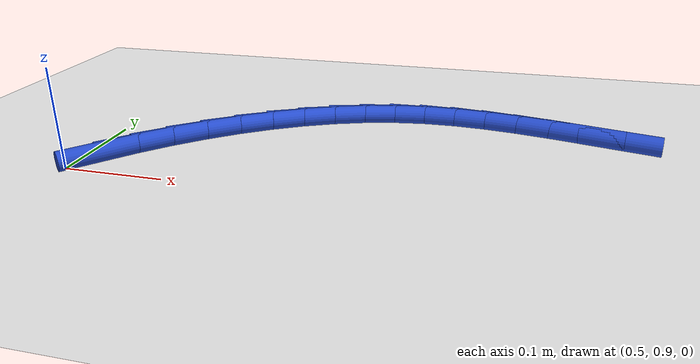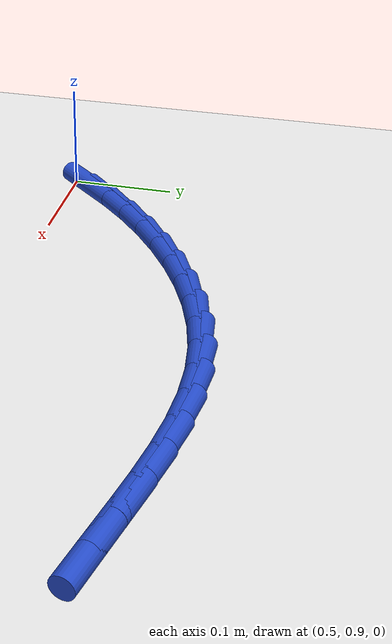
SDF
<sdf version="1.6">
 <world name="default">
  <model name="ground_plane">
   <static>1</static>
   <link name="link">
    <collision name="collision">
     <geometry><plane><normal>0 0 1</normal><size>100 100</size></plane></geometry>
     <surface><friction><ode><mu>100</mu><mu2>50</mu2></ode></friction></surface>
    </collision>
    <visual name="visual">
     <cast_shadows>0</cast_shadows>
     <geometry><plane><normal>0 0 1</normal><size>100 100</size></plane></geometry>
     <material>
      <script><uri>file://media/materials/scripts/gazebo.material</uri><name>Gazebo/WhiteGlow</name></script>
     </material>
    </visual>
   </link>
  </model>
  <model name="line">
   <link name="link_32">
    <pose>0.5239589491475768 0.9228271003695171 0.01 0 1.57 0.8429076313974756</pose>
    <collision name="collision">
     <geometry><cylinder><radius>0.01</radius><length>0.08</length></cylinder></geometry>
    </collision>
    <visual name="visual">
     <material>
      <script><name>Gazebo/Blue</name><uri>file://media/materials/scripts/gazebo.material</uri></script>
     </material>
     <geometry><cylinder><radius>0.01</radius><length>0.08</length></cylinder></geometry>
    </visual>
   </link>
   <link name="link_33">
    <pose>0.5470649551654392 0.9487562023604562 0.01 0 1.57 0.7802118866494246</pose>
    <collision name="collision">
     <geometry><cylinder><radius>0.01</radius><length>0.08</length></cylinder></geometry>
    </collision>
    <visual name="visual">
     <material>
      <script><name>Gazebo/Blue</name><uri>file://media/materials/scripts/gazebo.material</uri></script>
     </material>
     <geometry><cylinder><radius>0.01</radius><length>0.08</length></cylinder></geometry>
    </visual>
   </link>
   <link name="link_34">
    <pose>0.5720384568948993 0.9734719993249351 0.01 0 1.57 0.715855679188438</pose>
    <collision name="collision">
     <geometry><cylinder><radius>0.01</radius><length>0.08</length></cylinder></geometry>
    </collision>
    <visual name="visual">
     <material>
      <script><name>Gazebo/Blue</name><uri>file://media/materials/scripts/gazebo.material</uri></script>
     </material>
     <geometry><cylinder><radius>0.01</radius><length>0.08</length></cylinder></geometry>
    </visual>
   </link>
   <link name="link_35">
    <pose>0.5987214142825881 0.9966798238931742 0.01 0 1.57 0.6491029901672987</pose>
    <collision name="collision">
     <geometry><cylinder><radius>0.01</radius><length>0.08</length></cylinder></geometry>
    </collision>
    <visual name="visual">
     <material>
      <script><name>Gazebo/Blue</name><uri>file://media/materials/scripts/gazebo.material</uri></script>
     </material>
     <geometry><cylinder><radius>0.01</radius><length>0.08</length></cylinder></geometry>
    </visual>
   </link>
   <link name="link_36">
    <pose>0.6269228405587489 1.018078783060979 0.01 0 1.57 0.5786432785679712</pose>
    <collision name="collision">
     <geometry><cylinder><radius>0.01</radius><length>0.08</length></cylinder></geometry>
    </collision>
    <visual name="visual">
     <material>
      <script><name>Gazebo/Blue</name><uri>file://media/materials/scripts/gazebo.material</uri></script>
     </material>
     <geometry><cylinder><radius>0.01</radius><length>0.08</length></cylinder></geometry>
    </visual>
   </link>
   <link name="link_37">
    <pose>0.656451748953627 1.0373679838241572 0.01 0 1.57 0.5031580478176646</pose>
    <collision name="collision">
     <geometry><cylinder><radius>0.01</radius><length>0.08</length></cylinder></geometry>
    </collision>
    <visual name="visual">
     <material>
      <script><name>Gazebo/Blue</name><uri>file://media/materials/scripts/gazebo.material</uri></script>
     </material>
     <geometry><cylinder><radius>0.01</radius><length>0.08</length></cylinder></geometry>
    </visual>
   </link>
   <link name="link_38">
    <pose>0.6871171526974661 1.0542465331785142 0.01 0 1.57 0.4213295366004876</pose>
    <collision name="collision">
     <geometry><cylinder><radius>0.01</radius><length>0.08</length></cylinder></geometry>
    </collision>
    <visual name="visual">
     <material>
      <script><name>Gazebo/Blue</name><uri>file://media/materials/scripts/gazebo.material</uri></script>
     </material>
     <geometry><cylinder><radius>0.01</radius><length>0.08</length></cylinder></geometry>
    </visual>
   </link>
   <link name="link_39">
    <pose>0.7187280650205103 1.0684135381198572 0.01 0 1.57 0.33189579166244354</pose>
    <collision name="collision">
     <geometry><cylinder><radius>0.01</radius><length>0.08</length></cylinder></geometry>
    </collision>
    <visual name="visual">
     <material>
      <script><name>Gazebo/Blue</name><uri>file://media/materials/scripts/gazebo.material</uri></script>
     </material>
     <geometry><cylinder><radius>0.01</radius><length>0.08</length></cylinder></geometry>
    </visual>
   </link>
   <link name="link_40">
    <pose>0.751093499153004 1.0795681056439916 0.01 0 1.57 0.2337721022812503</pose>
    <collision name="collision">
     <geometry><cylinder><radius>0.01</radius><length>0.08</length></cylinder></geometry>
    </collision>
    <visual name="visual">
     <material>
      <script><name>Gazebo/Blue</name><uri>file://media/materials/scripts/gazebo.material</uri></script>
     </material>
     <geometry><cylinder><radius>0.01</radius><length>0.08</length></cylinder></geometry>
    </visual>
   </link>
   <link name="link_41">
    <pose>0.7840224683251918 1.0874093427467255 0.01 0 1.57 0.12646672706477355</pose>
    <collision name="collision">
     <geometry><cylinder><radius>0.01</radius><length>0.08</length></cylinder></geometry>
    </collision>
    <visual name="visual">
     <material>
      <script><name>Gazebo/Blue</name><uri>file://media/materials/scripts/gazebo.material</uri></script>
     </material>
     <geometry><cylinder><radius>0.01</radius><length>0.08</length></cylinder></geometry>
    </visual>
   </link>
   <link name="link_42">
    <pose>0.8173250234270161 1.0916436060331283 0.01 0 1.57 0.020659050336729705</pose>
    <collision name="collision">
     <geometry><cylinder><radius>0.01</radius><length>0.08</length></cylinder></geometry>
    </collision>
    <visual name="visual">
     <material>
      <script><name>Gazebo/Blue</name><uri>file://media/materials/scripts/gazebo.material</uri></script>
     </material>
     <geometry><cylinder><radius>0.01</radius><length>0.08</length></cylinder></geometry>
    </visual>
   </link>
   <link name="link_43">
    <pose>0.8508626442353454 1.0923365600157995 0.01 0 1.57 -0.06710515468268982</pose>
    <collision name="collision">
     <geometry><cylinder><radius>0.01</radius><length>0.08</length></cylinder></geometry>
    </collision>
    <visual name="visual">
     <material>
      <script><name>Gazebo/Blue</name><uri>file://media/materials/scripts/gazebo.material</uri></script>
     </material>
     <geometry><cylinder><radius>0.01</radius><length>0.08</length></cylinder></geometry>
    </visual>
   </link>
   <link name="link_44">
    <pose>0.8845708525840756 1.0900711640229632 0.01 0 1.57 -0.13520231619304565</pose>
    <collision name="collision">
     <geometry><cylinder><radius>0.01</radius><length>0.08</length></cylinder></geometry>
    </collision>
    <visual name="visual">
     <material>
      <script><name>Gazebo/Blue</name><uri>file://media/materials/scripts/gazebo.material</uri></script>
     </material>
     <geometry><cylinder><radius>0.01</radius><length>0.08</length></cylinder></geometry>
    </visual>
   </link>
   <link name="link_45">
    <pose>0.9183909197407225 1.0854705457996023 0.01 0 1.57 -0.1842493978542337</pose>
    <collision name="collision">
     <geometry><cylinder><radius>0.01</radius><length>0.08</length></cylinder></geometry>
    </collision>
    <visual name="visual">
     <material>
      <script><name>Gazebo/Blue</name><uri>file://media/materials/scripts/gazebo.material</uri></script>
     </material>
     <geometry><cylinder><radius>0.01</radius><length>0.08</length></cylinder></geometry>
    </visual>
   </link>
   <link name="link_46">
    <pose>0.952264116972802 1.0791578330906992 0.01 0 1.57 -0.21516445164552903</pose>
    <collision name="collision">
     <geometry><cylinder><radius>0.01</radius><length>0.08</length></cylinder></geometry>
    </collision>
    <visual name="visual">
     <material>
      <script><name>Gazebo/Blue</name><uri>file://media/materials/scripts/gazebo.material</uri></script>
     </material>
     <geometry><cylinder><radius>0.01</radius><length>0.08</length></cylinder></geometry>
    </visual>
   </link>
   <link name="link_47">
    <pose>0.9861317155478289 1.071756153641235 0.01 0 1.57 -0.22867323404507947</pose>
    <collision name="collision">
     <geometry><cylinder><radius>0.01</radius><length>0.08</length></cylinder></geometry>
    </collision>
    <visual name="visual">
     <material>
      <script><name>Gazebo/Blue</name><uri>file://media/materials/scripts/gazebo.material</uri></script>
     </material>
     <geometry><cylinder><radius>0.01</radius><length>0.08</length></cylinder></geometry>
    </visual>
   </link>
   <link name="link_48">
    <pose>1.0199349867333196 1.0638886351961927 0.01 0 1.57 -0.225046776954098</pose>
    <collision name="collision">
     <geometry><cylinder><radius>0.01</radius><length>0.08</length></cylinder></geometry>
    </collision>
    <visual name="visual">
     <material>
      <script><name>Gazebo/Blue</name><uri>file://media/materials/scripts/gazebo.material</uri></script>
     </material>
     <geometry><cylinder><radius>0.01</radius><length>0.08</length></cylinder></geometry>
    </visual>
   </link>
  </model>
 </world>
</sdf>
